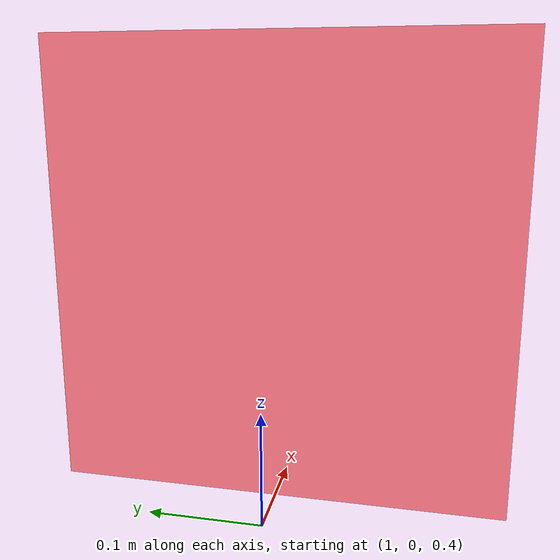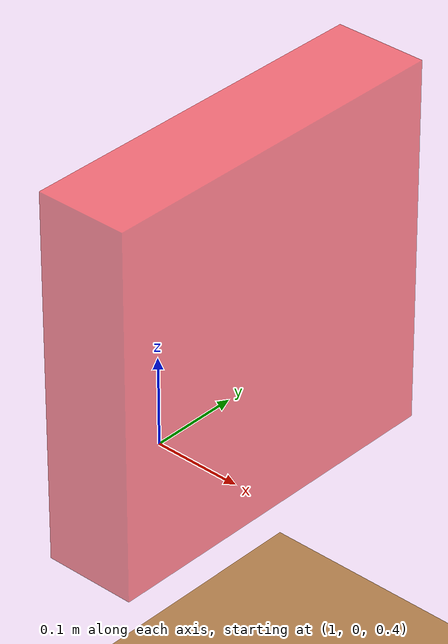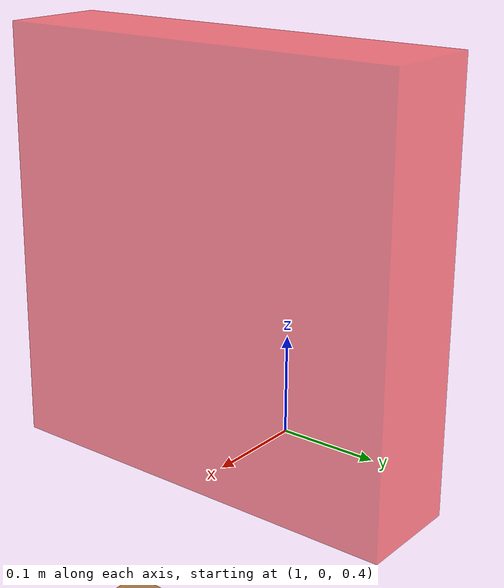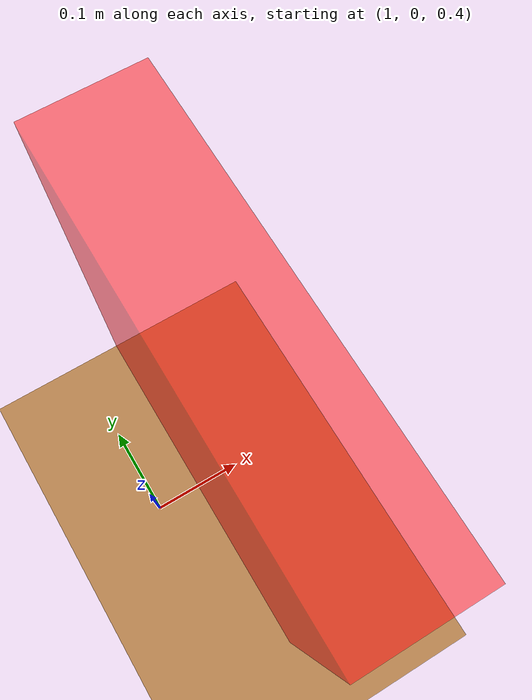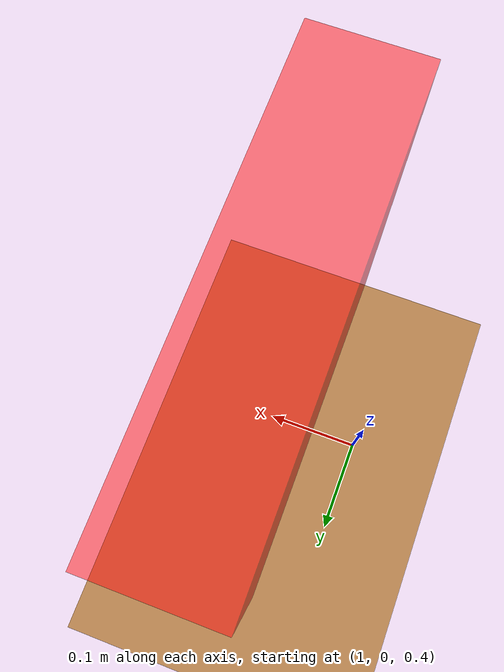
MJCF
<mujoco model="empty_floor">
  <compiler angle="radian"/>
  <option timestep="0.0005" gravity="0 0 -9.81">
      <flag sensornoise="disable" contact="enable" energy="enable" gravity="enable"/>
  </option>
  <asset>
    <texture builtin="gradient" height="256" rgb1=".9 .9 1." rgb2=".2 .3 .4" type="skybox" width="256"/>
    <texture file="../textures/wood-tiles.png" type="2d" name="texplane"/>
    <material name="floorplane" reflectance="0.01" shininess="0.0" specular="0.0" texrepeat="2 2" texture="texplane" texuniform="true"/>
  </asset>

  <worldbody>
    <!-- Floor -->
    <geom condim="3" material="floorplane" name="floor" pos="0 0 0" size="3 3 .125" type="plane"/>
    <light diffuse=".8 .8 .8" dir="0 -.15 -1" directional="false" pos="1 1 8.0" specular="0.3 0.3 0.3" castshadow="false"/>
    <light diffuse=".8 .8 .8" dir="0 -.15 -1" directional="false" pos="-3. -3. 8.0" specular="0.3 0.3 0.3" castshadow="false"/>
    <!-- front view -->
    <camera mode="fixed" name="frontview" pos="1.6 0 1.45" quat="0.56 0.43 0.43 0.56"/>
    <!-- bird view -->
    <camera mode="fixed" name="birdview" pos="-0.2 0 3.0" quat="0.7071 0 0 0.7071"/>
    <!-- agent view -->
    <camera mode="fixed" name="agentview" pos="0.5 0 1.35" quat="0.653 0.271 0.271 0.653"/>
    <!-- side view -->
    <camera mode="fixed" name="sideview" pos="-0.05651774593317116 1.2761224129427358 1.4879572214102434" quat="0.009905065491771751 0.006877963156909582 0.5912228352893879 0.806418094001364" />
    <body name="object" pos="1.1 0 0.6">
        <inertial pos="0.0 0.0 0.0" mass="10" diaginertia="0.184 0.1 0.1"/>
        <geom type="box" size="0.05 0.2 0.2" friction="0.0000 0.000 0.0000" rgba="1 0 0 0.5"/>
    </body>
  </worldbody>
</mujoco>
